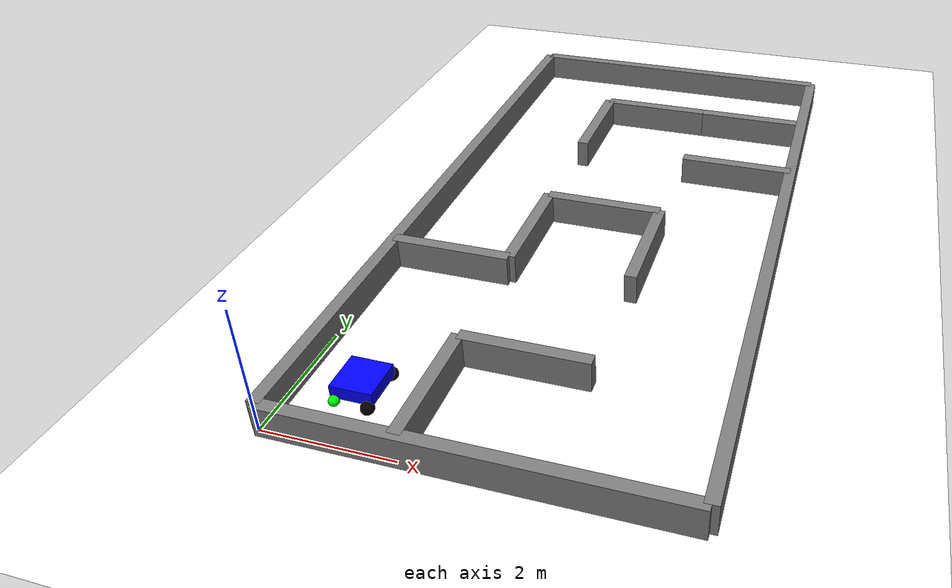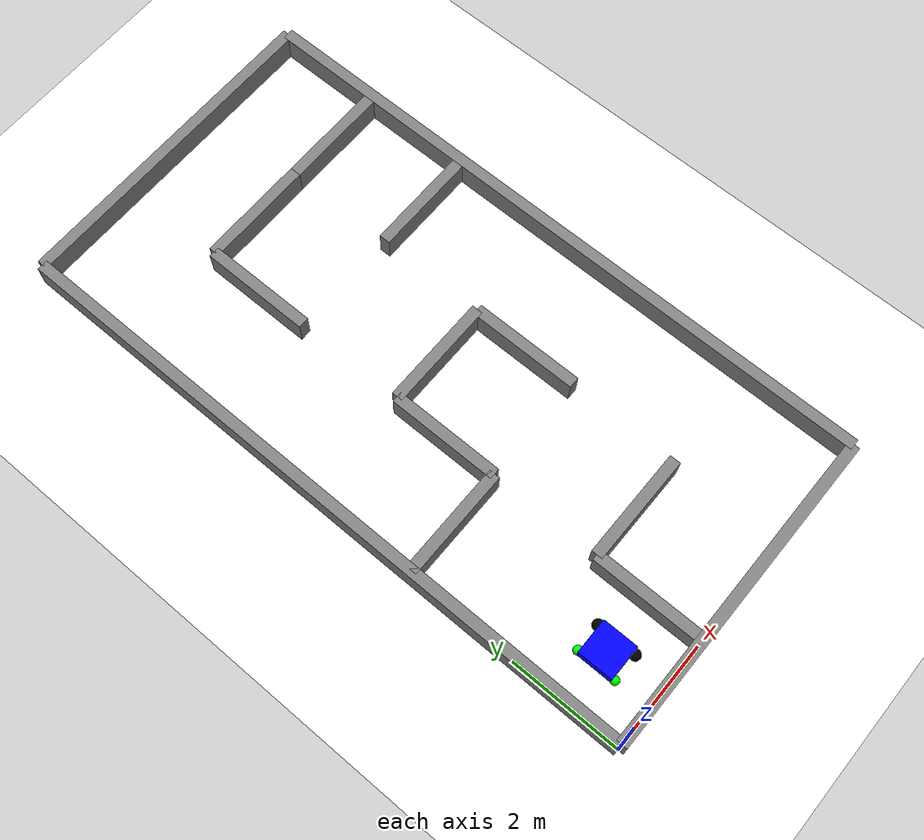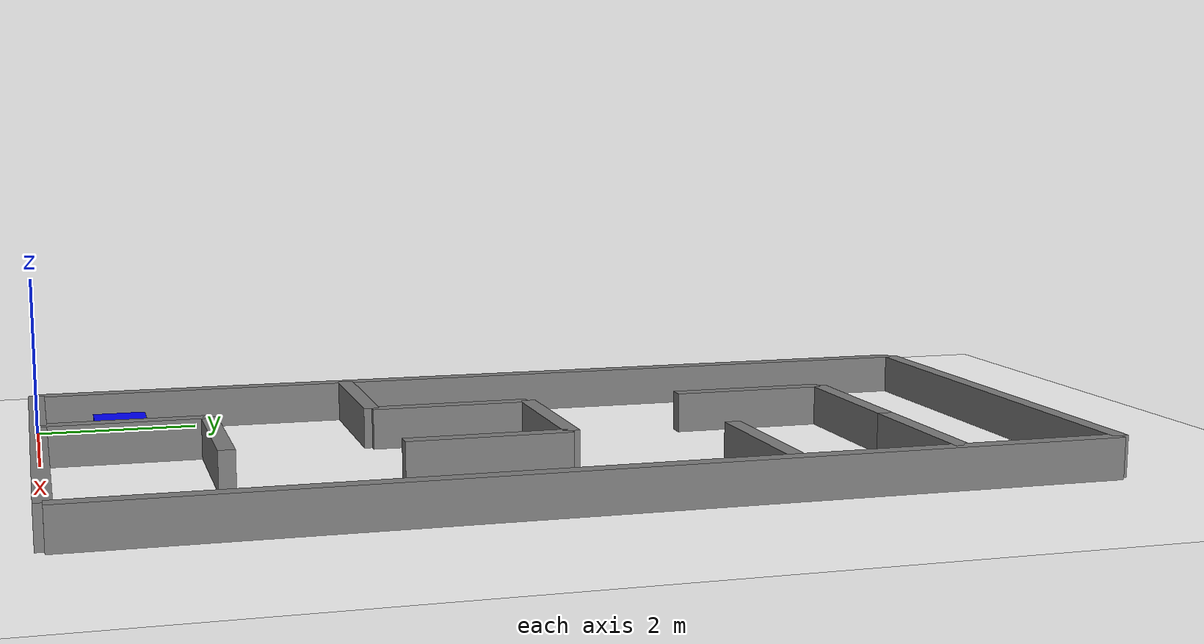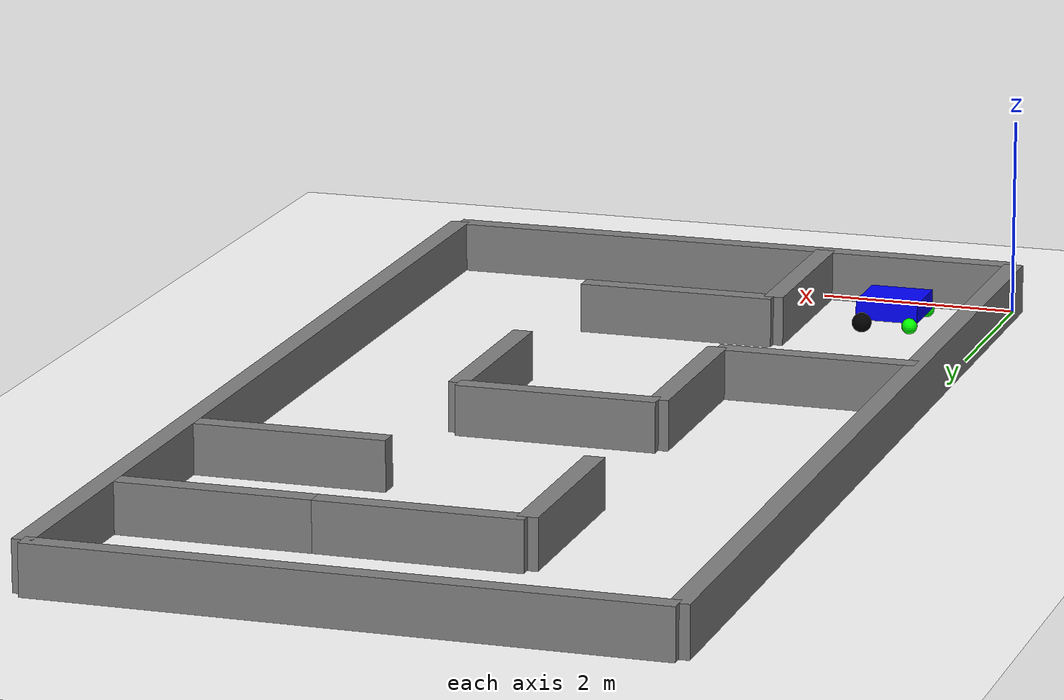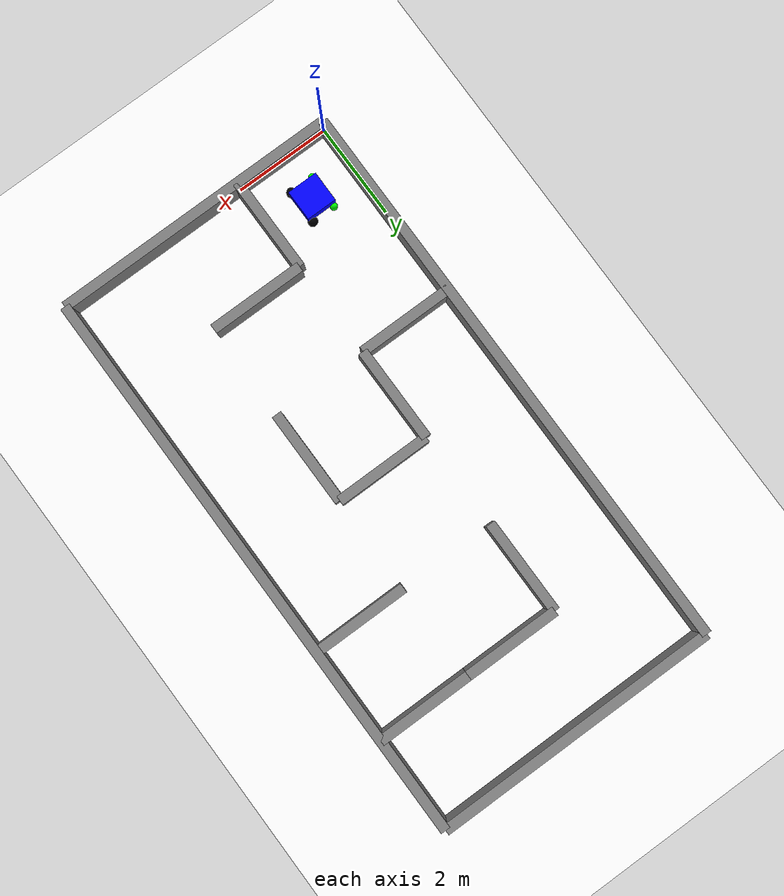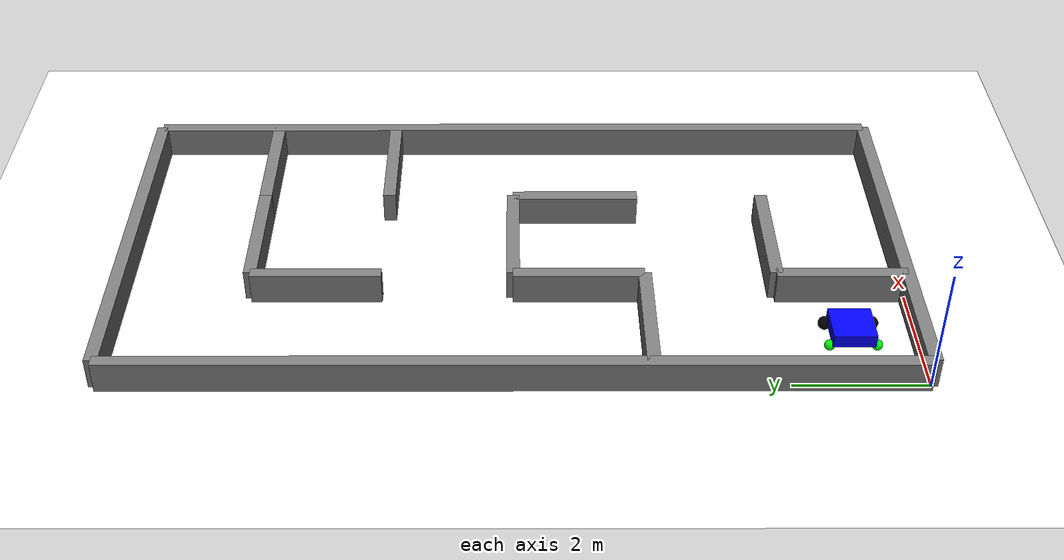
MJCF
<mujoco model="maze">
    <compiler angle="degree"/>
    <option gravity="0 0 -9.81" timestep="0.01"/>

    <default>
        <geom friction="1 0.1 0.1" density="1000"/>
        <joint damping="1"/>
    </default>

    <worldbody>
        <light pos="0 0 5"/>

        <!-- Floor -->
        <geom type="plane" size="20 20 0.1" rgba="1 1 1 1"/>

        <!-- ================= WALLS ================= -->
        <!-- Outer -->
        <geom type="box" pos="0 6 0.25" size="0.1 6 0.25"/>
        <geom type="box" pos="3 12 0.25" size="3 0.1 0.25"/>
        <geom type="box" pos="6 6 0.25" size="0.1 6 0.25"/>
        <geom type="box" pos="3 0 0.25" size="3 0.1 0.25"/>

        <!-- Internal (same as your builder) -->
        <geom type="box" pos="2 1 0.25" size="0.1 1 0.25"/>
        <geom type="box" pos="3 2 0.25" size="1 0.1 0.25"/>
        <geom type="box" pos="1 4 0.25" size="1 0.1 0.25"/>
        <geom type="box" pos="2 5 0.25" size="0.1 1 0.25"/>
        <geom type="box" pos="3 6 0.25" size="1 0.1 0.25"/>
        <geom type="box" pos="4 5 0.25" size="0.1 1 0.25"/>
        <geom type="box" pos="5 8 0.25" size="1 0.1 0.25"/>
        <geom type="box" pos="2 9 0.25" size="0.1 1 0.25"/>
        <geom type="box" pos="3 10 0.25" size="1 0.1 0.25"/>
        <geom type="box" pos="5 10 0.25" size="1 0.1 0.25"/>

        <!-- ================= ROBOT ================= -->
        <body name="robot" pos="1 1 0.25">
            <freejoint/>

            <!-- chassis -->
            <geom type="box" size="0.32 0.32 0.1" mass="15" rgba="0 0 1 1"/>

            <!-- ================= FRONT (POWERED) ================= -->
            <!-- left wheel -->
            <body pos="0.25 0.35 -0.12">
                <joint name="left_wheel" type="hinge" axis="0 1 0"/>
                <geom type="sphere" size="0.1" friction="2 0.1 0.1" rgba="0 0 0 1"/>
            </body>

            <!-- right wheel -->
            <body pos="0.25 -0.35 -0.12">
                <joint name="right_wheel" type="hinge" axis="0 1 0"/>
                <geom type="sphere" size="0.1" friction="2 0.1 0.1" rgba="0 0 0 1"/>
            </body>

            <!-- ================= BACK (PASSIVE) ================= -->
            <!-- rear left -->
            <body pos="-0.25 0.35 -0.12">
                <joint name="rear_left" type="hinge" axis="0 1 0"/>
                <geom type="sphere" size="0.08"
                    friction="0.3 0.005 0.002"
                    rgba="0 1 0 1"/>
            </body>

            <!-- rear right -->
            <body pos="-0.25 -0.35 -0.12">
                <joint name="rear_right" type="hinge" axis="0 1 0"/>
                <geom type="sphere" size="0.08"
                    friction="0.3 0.005 0.002"
                    rgba="0 1 0 1"/>
            </body>

        </body>
    </worldbody>

    <actuator>
        <velocity joint="left_wheel" ctrlrange="-50 50"/>
        <velocity joint="right_wheel" ctrlrange="-50 50"/>
    </actuator>
</mujoco>
